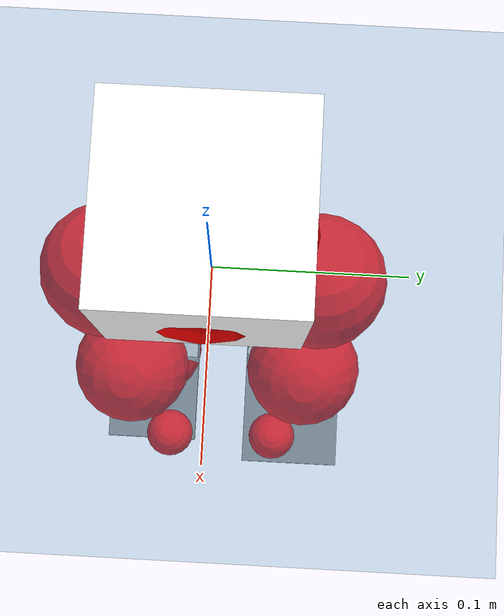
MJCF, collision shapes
<mujoco model="pi_12dof_release_v1">
  <compiler angle="radian" assetdir="assets" balanceinertia="true" inertiafromgeom="false"/>

  <option timestep="0.005" density="1.2" viscosity="2e-05"/>

  <size nkey="1"/>

  <visual>
    <quality shadowsize="8192"/>
    <map shadowclip="0.5"/>
  </visual>

  <default>
    <default class="/">
      <joint armature="0.01" damping="0.01" frictionloss="0.01"/>
      <geom contype="0" conaffinity="0" group="1" solref="-1000 -80"/>
      <site size="0.01 0.005 0.005" group="5"/>
      <general forcelimited="true" biastype="affine" gainprm="20" biasprm="0 -20 -0.5"/>
      <default class="foot">
        <geom size="0.0845 0.036 0.005" type="box" condim="6" group="4" priority="1" friction="0.9 0.2 0.2" solimp="0.015 1 0.005"/>
      </default>
      <default class="reward_collision_sphere">
        <geom group="5" rgba="1 0 0 1"/>
      </default>
    </default>
  </default>

  <asset>
    <texture type="skybox" colorspace="auto" name="//unnamed_texture_0" builtin="gradient" rgb1="0.95 0.95 0.95" rgb2="0.95 0.95 0.95" width="100" height="600"/>
    <texture type="2d" colorspace="auto" name="texplane" builtin="checker" rgb1="0.345 0.575 0.748" rgb2="0.345 0.575 0.748" markrgb="1 1 1" width="512" height="512"/>
    <material name="MatPlane" class="/" texture="texplane" texuniform="true" texrepeat="2 2" specular="0.9"/>
    <mesh name="baselink_1" class="/" file="baselink_1.STL"/>
    <mesh name="r_hip_pitch_link" class="/" file="r_hip_pitch_link.STL"/>
    <mesh name="r_hip_roll_link" class="/" file="r_hip_roll_link.STL"/>
    <mesh name="r_thigh_link" class="/" file="r_thigh_link.STL"/>
    <mesh name="r_calf_link" class="/" file="r_calf_link.STL"/>
    <mesh name="r_ankle_pitch_link" class="/" file="r_ankle_pitch_link.STL"/>
    <mesh name="r_ankle_roll_link" class="/" file="r_ankle_roll_link.STL"/>
    <mesh name="l_hip_pitch_link" class="/" file="l_hip_pitch_link.STL"/>
    <mesh name="l_hip_roll_link" class="/" file="l_hip_roll_link.STL"/>
    <mesh name="l_thigh_link" class="/" file="l_thigh_link.STL"/>
    <mesh name="l_calf_link" class="/" file="l_calf_link.STL"/>
    <mesh name="l_ankle_pitch_link" class="/" file="l_ankle_pitch_link.STL"/>
    <mesh name="l_ankle_roll_link" class="/" file="l_ankle_roll_link.STL"/>
  </asset>

  <worldbody>
    <geom name="floor" class="/" size="100 100 0.125" type="plane" group="0" material="MatPlane"/>
    <light name="toplight_shadow" class="/" pos="0 0 5" dir="0.0990148 0.0990148 -0.990148" type="directional" ambient="0.04 0.04 0.04" diffuse="0.55 0.55 0.55" specular="0.12 0.12 0.12"/>
    <light name="toplight_fill" class="/" pos="0 0 5" dir="0.0990148 0.0990148 -0.990148" type="directional" castshadow="false" ambient="0.04 0.04 0.04" diffuse="0.3 0.3 0.3" specular="0.08 0.08 0.08"/>
    <body name="trunk" pos="-0.00238444 -0.000955306 -0.0011787" quat="0.999999 0.000612367 -0.00026091 0.000748048">
      <inertial pos="0.000975426 0.00044994 0.0413795" quat="0.696482 0.0139069 -0.00323713 0.717432" mass="1.69776" diaginertia="0.0103212 0.00187256 0.0050354"/>
      <joint name="//unnamed_joint_0" type="free"/>
      <geom name="//unnamed_geom_1" class="/" type="mesh" density="0" rgba="1 1 1 1" mesh="baselink_1"/>
      <geom name="//unnamed_geom_2" class="/" size="0.0461992 0.0461992 0.0461992" pos="0 0 0.0828074" type="box" rgba="1 1 1 1"/>
      <geom name="//unnamed_geom_3" class="reward_collision_sphere" size="0.0508191" pos="0 0 0.0724565"/>
      <site name="imu" class="/" pos="0.0076311 -0.0117686 0.000115625" size="0.00923984"/>
      <camera name="track" class="/" pos="0 -1.46039 0" quat="0.707107 0.707107 0 0" mode="trackcom"/>
      <camera name="ego_camera" class="/" pos="0.0754997 0 0.186317" quat="-0.5 -0.5 0.5 0.5"/>
      <body name="r_hip_pitch_link" pos="0.000177878 -0.0161758 -0.0351098" quat="0.99225 -0.000857399 -0.124254 -0.000758486">
        <inertial pos="-0.000401002 -0.0409363 0.00062761" quat="-0.0242717 0.699622 -0.0352861 0.713228" mass="0.301586" diaginertia="0.000115801 2.09703e-05 0.000103638"/>
        <joint name="r_hip_pitch_joint" class="/" pos="0 0 0" axis="0.000866591 -0.999992 0.00395526" range="-1.7354 1.23999" armature="0.00859493" damping="0.00419908" frictionloss="0.0089331"/>
        <geom name="//unnamed_geom_4" class="/" type="mesh" density="0" rgba="0.75294 0.75294 0.75294 1" mesh="r_hip_pitch_link"/>
        <geom name="//unnamed_geom_5" class="/" size="0.000461992 0.000461992 0.000461992" type="box" rgba="0.75294 0.75294 0.75294 1"/>
        <body name="r_hip_roll_link" pos="-0.000411072 -0.0401325 -8.61463e-06" quat="1 0.000311714 -0.000166274 -2.42223e-05">
          <inertial pos="-0.00122126 -0.00285856 -0.0655849" quat="0.706227 -0.0764409 -0.0839403 0.698824" mass="0.311482" diaginertia="0.000341893 5.68431e-05 0.000151007"/>
          <joint name="r_hip_roll_joint" class="/" pos="0 0 0" axis="-0.99993 -0.0065213 -0.0099014" range="-0.136043 0.552989" armature="0.00914007" damping="0.0111436" frictionloss="0.0093847"/>
          <geom name="//unnamed_geom_6" class="/" type="mesh" density="0" rgba="0.75294 0.75294 0.75294 1" mesh="r_hip_roll_link"/>
          <geom name="//unnamed_geom_7" class="/" size="0.000461992 0.000461992 0.000461992" type="box" rgba="0.75294 0.75294 0.75294 1"/>
          <geom name="//unnamed_geom_8" class="reward_collision_sphere" size="0.0369593"/>
          <body name="r_thigh_link" pos="0.00191645 0.00290936 -0.0691375" quat="1 1.79015e-05 2.27894e-05 3.46929e-05">
            <inertial pos="0.00100203 -0.000991221 -0.0469815" quat="0.738129 0.674659 0.000120009 0.000480684" mass="0.0925538" diaginertia="0.000133741 2.00207e-05 6.90777e-05"/>
            <joint name="r_thigh_joint" class="/" pos="0 0 0" axis="0.00757643 0.0102797 -0.999918" stiffness="0.00916763" range="-0.313847 0.598895" armature="0.00870129" damping="0" frictionloss="0.00816312"/>
            <geom name="//unnamed_geom_9" class="/" type="mesh" density="0" rgba="0.75294 0.75294 0.75294 1" mesh="r_thigh_link"/>
            <geom name="//unnamed_geom_10" class="/" size="0.000461992 0.000461992 0.000461992" type="box" rgba="0.75294 0.75294 0.75294 1"/>
            <body name="r_calf_link" pos="0.00186652 0.000594162 -0.0702545" quat="0.947644 -1.29099e-06 0.319327 5.00167e-05">
              <inertial pos="0.000187543 -0.00281427 -0.0722388" quat="0.999957 0.00269149 -0.00731875 -0.00506518" mass="0.665906" diaginertia="0.00369984 0.000754766 0.000211418"/>
              <joint name="r_calf_joint" class="/" pos="0 0 0" axis="0.00204486 -0.999974 0.00692343" range="-1.59584 0.643113" armature="0.00793984" damping="0.00471579" frictionloss="0.00898369"/>
              <geom name="//unnamed_geom_11" class="/" type="mesh" density="0" rgba="0.75294 0.75294 0.75294 1" mesh="r_calf_link"/>
              <geom name="//unnamed_geom_12" class="/" size="0.000461992 0.000461992 0.000461992" type="box" rgba="0.75294 0.75294 0.75294 1"/>
              <geom name="//unnamed_geom_13" class="reward_collision_sphere" size="0.0369593"/>
              <body name="r_ankle_pitch_link" pos="0.0019167 0.000767714 -0.147118" quat="0.980082 -1.95949e-05 -0.198595 -0.000110818">
                <inertial pos="0.00465152 0.00253382 -0.00281868" quat="0.0131292 0.705395 -2.92125e-05 0.708693" mass="0.142615" diaginertia="0.000323261 4.7614e-05 0.000147159"/>
                <joint name="r_ankle_pitch_joint" class="/" pos="0 0 0" axis="0.000461031 -1 0.000361209" range="-1.30612 0.550747" armature="0.00920375" damping="0.00626676" frictionloss="0.0105135"/>
                <geom name="//unnamed_geom_14" class="/" type="mesh" density="0" rgba="0.75294 0.75294 0.75294 1" mesh="r_ankle_pitch_link"/>
                <geom name="//unnamed_geom_15" class="/" size="0.0360354 0.0369593 0.0230996" type="box" rgba="0.75294 0.75294 0.75294 1"/>
                <body name="r_ankle_roll_link" pos="0.0759643 0.00104643 -0.00155664" quat="1 4.11533e-05 2.56908e-05 -9.33648e-06">
                  <inertial pos="-0.0247053 0.000560616 -0.0127557" quat="0.559845 0.431735 0.428178 0.562887" mass="0.384742" diaginertia="0.00114304 0.000214328 0.000315884"/>
                  <joint name="r_ankle_roll_joint" class="/" pos="0 0 0" axis="-0.999897 -0.000453577 0.0143215" range="-0.107949 0.0957598" armature="0.00797936" damping="0.0216422" frictionloss="0.00854206"/>
                  <geom name="//unnamed_geom_16" class="/" type="mesh" density="0" rgba="0.75294 0.75294 0.75294 1" mesh="r_ankle_roll_link"/>
                  <geom name="//unnamed_geom_17" class="/" type="mesh" rgba="0.75294 0.75294 0.75294 1" mesh="r_ankle_roll_link"/>
                  <geom name="right_foot" class="foot" size="0.070988 0.0346191 0.00477549" pos="-0.0513398 0 -0.0455441"/>
                  <geom name="//unnamed_geom_19" class="reward_collision_sphere" size="0.0369593" pos="-0.0503331 0 -0.0207019"/>
                  <geom name="//unnamed_geom_20" class="reward_collision_sphere" size="0.0184797" pos="0.0150999 0.0146039 -0.0414037"/>
                  <geom name="//unnamed_geom_21" class="reward_collision_sphere" size="0.0184797" pos="-0.1208 0.0146039 -0.0414037"/>
                  <site name="right_foot" class="foot" pos="-0.0513398 0 -0.0455441" size="0.00923984"/>
                </body>
              </body>
            </body>
          </body>
        </body>
      </body>
      <body name="l_hip_pitch_link" pos="0.000421725 0.0160947 -0.036522" quat="0.992183 -0.000351264 -0.124792 -3.00266e-05">
        <inertial pos="0.000535324 0.0399805 -0.00291694" quat="-0.0391727 0.705483 0.0251549 0.707196" mass="0.321043" diaginertia="0.000138591 2.14272e-05 0.000120487"/>
        <joint name="l_hip_pitch_joint" class="/" pos="0 0 0" axis="0.00478566 0.999988 0.000629599" range="-1.19672 1.74739" armature="0.0104765" damping="0.00721809" frictionloss="0.00970354"/>
        <geom name="//unnamed_geom_22" class="/" type="mesh" density="0" rgba="0.75294 0.75294 0.75294 1" mesh="l_hip_pitch_link"/>
        <geom name="//unnamed_geom_23" class="/" size="0.000461992 0.000461992 0.000461992" type="box" rgba="0.75294 0.75294 0.75294 1"/>
        <body name="l_hip_roll_link" pos="-0.000611933 0.0418084 -0.000366399" quat="1 -5.17433e-05 0.00017195 -4.69872e-05">
          <inertial pos="-0.00425411 -0.00144977 -0.0653877" quat="0.691831 -0.0806695 -0.0708769 0.714029" mass="0.312412" diaginertia="0.000334851 5.83501e-05 0.000148322"/>
          <joint name="l_hip_roll_joint" class="/" pos="0 0 0" axis="-0.999996 1.15344e-05 -0.00285625" range="-0.553548 0.169404" armature="0.00867115" damping="0" frictionloss="0.00919524"/>
          <geom name="//unnamed_geom_24" class="/" type="mesh" density="0" rgba="0.75294 0.75294 0.75294 1" mesh="l_hip_roll_link"/>
          <geom name="//unnamed_geom_25" class="/" size="0.000461992 0.000461992 0.000461992" type="box" rgba="0.75294 0.75294 0.75294 1"/>
          <geom name="//unnamed_geom_26" class="reward_collision_sphere" size="0.0369593"/>
          <body name="l_thigh_link" pos="-0.00229571 0.00023252 -0.074272" quat="1 3.4379e-05 1.10553e-05 2.59223e-05">
            <inertial pos="0.00183524 -0.0033829 -0.0469888" quat="0.667278 0.744769 -0.00703636 0.00305514" mass="0.0858622" diaginertia="0.00012933 1.96709e-05 6.87408e-05"/>
            <joint name="l_thigh_joint" class="/" pos="0 0 0" axis="-0.00181363 0.000483407 -0.999998" range="-0.598403 0.271176" armature="0.00906241" damping="0.000594033" frictionloss="0.00961613"/>
            <geom name="//unnamed_geom_27" class="/" type="mesh" density="0" rgba="0.75294 0.75294 0.75294 1" mesh="l_thigh_link"/>
            <geom name="//unnamed_geom_28" class="/" size="0.000461992 0.000461992 0.000461992" type="box" rgba="0.75294 0.75294 0.75294 1"/>
            <body name="l_calf_link" pos="3.81278e-05 0.000996974 -0.0716572" quat="0.947682 8.3729e-06 0.319217 -7.86608e-06">
              <inertial pos="0.000407436 0.00488228 -0.0750541" quat="0.999984 0.00294554 -0.000402772 0.00475157" mass="0.626716" diaginertia="0.00357225 0.000713018 0.000201416"/>
              <joint name="l_calf_joint" class="/" pos="0 0 0" axis="-0.00328955 0.999993 0.00175009" range="-0.60063 1.70755" armature="0.00923413" damping="0.00943352" frictionloss="0.00913848"/>
              <geom name="//unnamed_geom_29" class="/" type="mesh" density="0" rgba="0.75294 0.75294 0.75294 1" mesh="l_calf_link"/>
              <geom name="//unnamed_geom_30" class="/" size="0.000461992 0.000461992 0.000461992" type="box" rgba="0.75294 0.75294 0.75294 1"/>
              <geom name="//unnamed_geom_31" class="reward_collision_sphere" size="0.0369593"/>
              <body name="l_ankle_pitch_link" pos="-0.000405965 0.000650129 -0.142358" quat="0.980061 3.35503e-06 -0.198699 -3.90119e-05">
                <inertial pos="0.00289412 0.00164868 9.89289e-05" quat="-0.00228273 0.707088 0.00217936 0.707118" mass="0.129551" diaginertia="0.000310324 4.47575e-05 0.000142153"/>
                <joint name="l_ankle_pitch_joint" class="/" pos="0 0 0" axis="-0.00106974 0.999999 0.000390223" range="-0.559727 1.32052" armature="0.00810038" damping="0.0139892" frictionloss="0.00877724"/>
                <geom name="//unnamed_geom_32" class="/" type="mesh" density="0" rgba="0.75294 0.75294 0.75294 1" mesh="l_ankle_pitch_link"/>
                <geom name="//unnamed_geom_33" class="/" size="0.0360354 0.0369593 0.0230996" type="box" rgba="0.75294 0.75294 0.75294 1"/>
                <body name="l_ankle_roll_link" pos="0.0785742 0.000107259 0.00180811" quat="1 0.000373604 -0.000286771 0.000383915">
                  <inertial pos="-0.0247741 -0.000339126 -0.0147854" quat="0.55899 0.43243 0.430294 0.561587" mass="0.385399" diaginertia="0.00115265 0.00020912 0.000327526"/>
                  <joint name="l_ankle_roll_joint" class="/" pos="0 0 0" axis="-0.999994 0.00158093 -0.00311241" range="-0.15977 0.153825" armature="0.0104397" damping="0.00512633" frictionloss="0.0092197"/>
                  <geom name="//unnamed_geom_34" class="/" type="mesh" density="0" rgba="0.75294 0.75294 0.75294 1" mesh="l_ankle_roll_link"/>
                  <geom name="//unnamed_geom_35" class="/" type="mesh" rgba="0.75294 0.75294 0.75294 1" mesh="l_ankle_roll_link"/>
                  <geom name="left_foot" class="foot" size="0.0873732 0.037568 0.00501265" pos="-0.0513398 0 -0.0455441"/>
                  <geom name="//unnamed_geom_37" class="reward_collision_sphere" size="0.0369593" pos="-0.0503331 0 -0.0207019"/>
                  <geom name="//unnamed_geom_38" class="reward_collision_sphere" size="0.0184797" pos="0.0150999 -0.0146039 -0.0414037"/>
                  <geom name="//unnamed_geom_39" class="reward_collision_sphere" size="0.0184797" pos="-0.1208 -0.0146039 -0.0414037"/>
                  <site name="left_foot" class="foot" pos="-0.0513398 0 -0.0455441" size="0.00923984"/>
                </body>
              </body>
            </body>
          </body>
        </body>
      </body>
    </body>
  </worldbody>

  <contact>
    <pair class="/" geom1="floor" geom2="right_foot" name="//unnamed_contact_1"/>
    <pair class="/" geom1="floor" geom2="left_foot" name="//unnamed_contact_0"/>
  </contact>

  <actuator>
    <general name="r_hip_pitch_joint" class="/" joint="r_hip_pitch_joint" forcerange="-19.5248 19.5248" gainprm="18.3638" biasprm="0 -18.3638 -0.45703"/>
    <general name="r_hip_roll_joint" class="/" joint="r_hip_roll_joint" forcerange="-17.4156 17.4156" gainprm="18.3638" biasprm="0 -18.3638 -0.45703"/>
    <general name="r_thigh_joint" class="/" joint="r_thigh_joint" forcerange="-20.4362 20.4362" gainprm="18.3638" biasprm="0 -18.3638 -0.45703"/>
    <general name="r_calf_joint" class="/" joint="r_calf_joint" forcerange="-19.5952 19.5952" gainprm="18.3638" biasprm="0 -18.3638 -0.45703"/>
    <general name="r_ankle_pitch_joint" class="/" joint="r_ankle_pitch_joint" forcerange="-19.3825 19.3825" gainprm="18.3638" biasprm="0 -18.3638 -0.45703"/>
    <general name="r_ankle_roll_joint" class="/" joint="r_ankle_roll_joint" forcerange="-20.4134 20.4134" gainprm="18.3638" biasprm="0 -18.3638 -0.45703"/>
    <general name="l_hip_pitch_joint" class="/" joint="l_hip_pitch_joint" forcerange="-18.5677 18.5677" gainprm="18.3638" biasprm="0 -18.3638 -0.45703"/>
    <general name="l_hip_roll_joint" class="/" joint="l_hip_roll_joint" forcerange="-21.4238 21.4238" gainprm="18.3638" biasprm="0 -18.3638 -0.45703"/>
    <general name="l_thigh_joint" class="/" joint="l_thigh_joint" forcerange="-17.407 17.407" gainprm="18.3638" biasprm="0 -18.3638 -0.45703"/>
    <general name="l_calf_joint" class="/" joint="l_calf_joint" forcerange="-19.0466 19.0466" gainprm="18.3638" biasprm="0 -18.3638 -0.45703"/>
    <general name="l_ankle_pitch_joint" class="/" joint="l_ankle_pitch_joint" forcerange="-20.7113 20.7113" gainprm="18.3638" biasprm="0 -18.3638 -0.45703"/>
    <general name="l_ankle_roll_joint" class="/" joint="l_ankle_roll_joint" forcerange="-21.0311 21.0311" gainprm="18.3638" biasprm="0 -18.3638 -0.45703"/>
  </actuator>

  <sensor>
    <gyro site="imu" name="imu_angular_velocity"/>
    <velocimeter site="imu" name="imu_linear_velocity"/>
    <framelinvel objtype="site" objname="left_foot" name="left_foot_global_linear_velocity"/>
    <framelinvel objtype="site" objname="right_foot" name="right_foot_global_linear_velocity"/>
  </sensor>

  <keyframe>
    <key name="home" qpos="0 0 0.291 1 0 0 0 0.4 0 0 -0.8 0.4 0 -0.4 0 0 0.8 -0.4 0"/>
  </keyframe>
</mujoco>
